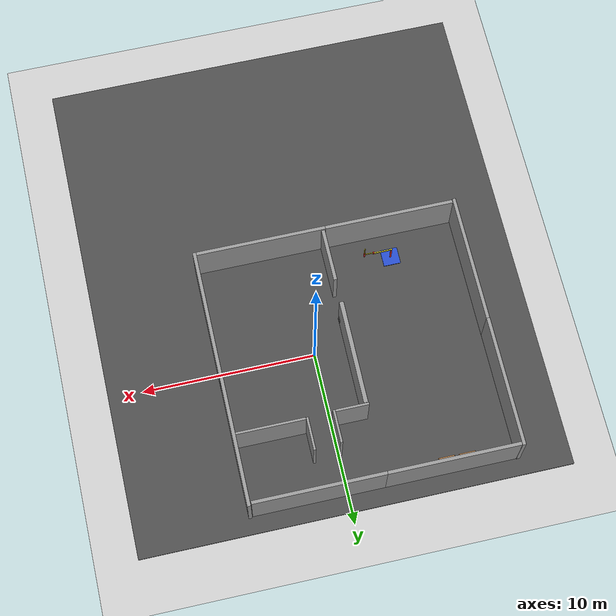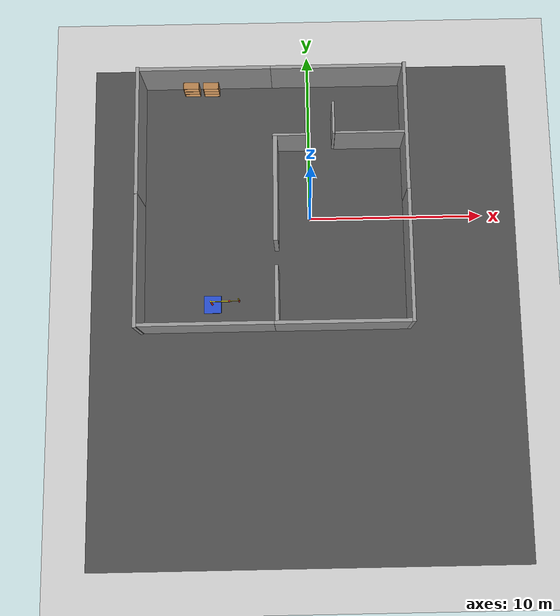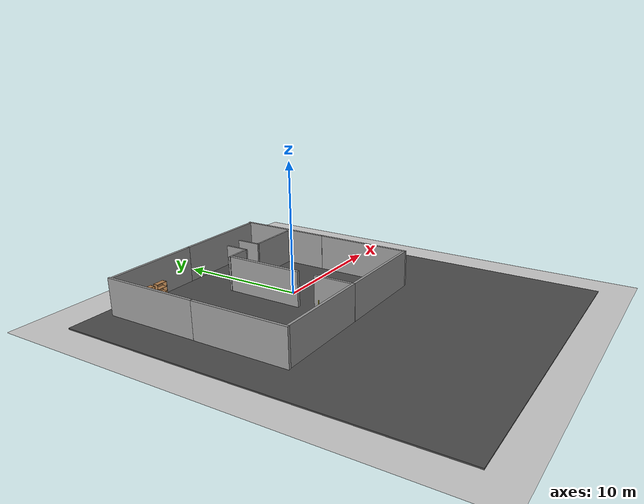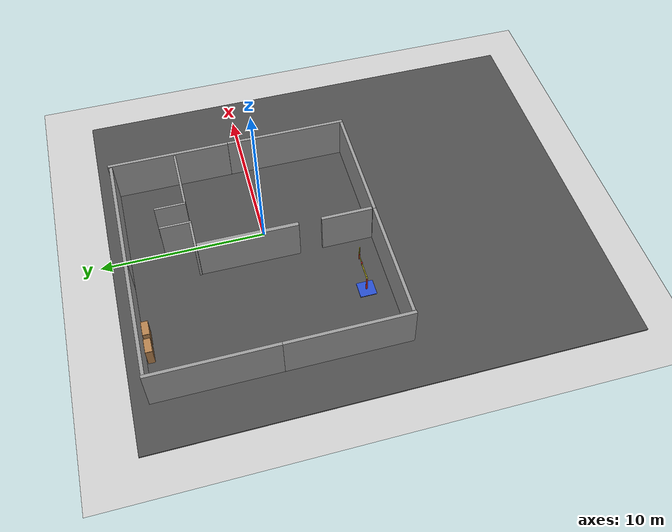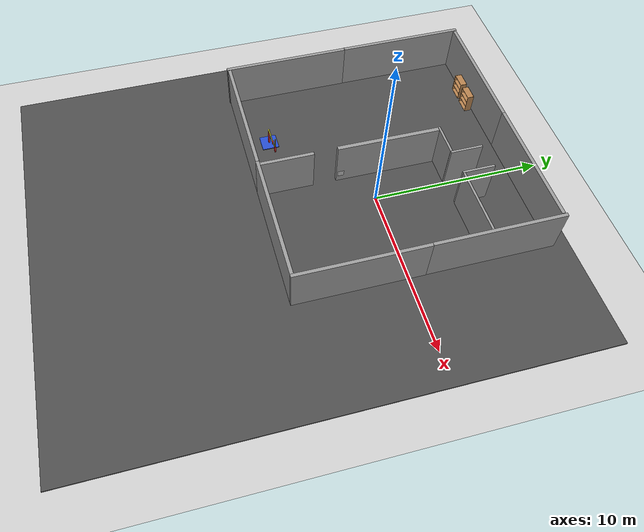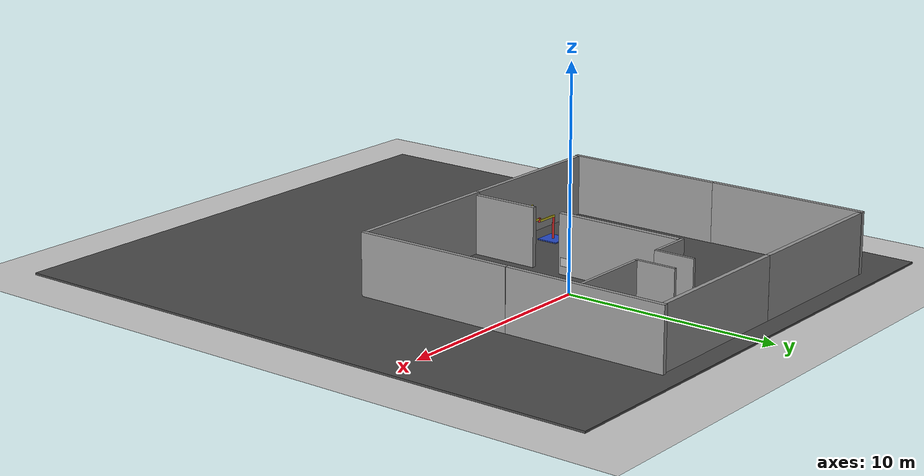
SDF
<sdf version="1.7">
 <world name="default">
  <light name="sun" type="directional">
   <pose>0 0 10 0 -0 0</pose>
   <diffuse>0.8 0.8 0.8 1</diffuse>
   <specular>0.2 0.2 0.2 1</specular>
   <attenuation>
    <range>1000</range>
    <constant>0.9</constant>
    <linear>0.01</linear>
    <quadratic>0.001</quadratic>
   </attenuation>
   <direction>-0.5 0.1 -0.9</direction>
   <spot><inner_angle>0</inner_angle><outer_angle>0</outer_angle><falloff>0</falloff></spot>
  </light>
  <model name="ground_plane">
   <static>1</static>
   <link name="link">
    <collision name="collision">
     <geometry><plane><normal>0 0 1</normal><size>100 100</size></plane></geometry>
     <surface><friction><ode><mu>100</mu><mu2>50</mu2></ode></friction></surface>
    </collision>
    <visual name="visual">
     <cast_shadows>0</cast_shadows>
     <geometry><plane><normal>0 0 1</normal><size>100 100</size></plane></geometry>
     <material>
      <script><uri>file://media/materials/scripts/gazebo.material</uri><name>Gazebo/Grey</name></script>
     </material>
    </visual>
   </link>
  </model>
  <gravity>0 0 -9.8</gravity>
  <magnetic_field>6e-06 2.3e-05 -4.2e-05</magnetic_field>
  <atmosphere type="adiabatic"/>
  <physics type="ode">
   <max_step_size>0.001</max_step_size>
   <real_time_factor>1</real_time_factor>
   <real_time_update_rate>1000</real_time_update_rate>
  </physics>
  <scene><ambient>0.4 0.4 0.4 1</ambient><background>0.7 0.7 0.7 1</background><shadows>1</shadows></scene>
  <spherical_coordinates>
   <surface_model>EARTH_WGS84</surface_model>
   <latitude_deg>0</latitude_deg>
   <longitude_deg>0</longitude_deg>
   <elevation>0</elevation>
   <heading_deg>0</heading_deg>
  </spherical_coordinates>
  <model name="asphalt_plane">
   <static>1</static>
   <link name="link">
    <collision name="collision"><geometry><box><size>24.6162 29.0071 0.1</size></box></geometry></collision>
    <visual name="visual">
     <cast_shadows>0</cast_shadows>
     <geometry><box><size>24.6162 29.0071 0.1</size></box></geometry>
     <material>
      <script>
       <uri>model://asphalt_plane/materials/scripts</uri>
       <uri>model://asphalt_plane/materials/textures</uri>
       <name>vrc/asphalt</name>
      </script>
     </material>
    </visual>
   </link>
   <pose>-0.354263 -5.16338 0 0 -0 0</pose>
  </model>
  <model name="grey_wall">
   <static>1</static>
   <link name="link">
    <pose>0 0 1.4 0 -0 0</pose>
    <collision name="collision"><geometry><box><size>7.5 0.2 2.8</size></box></geometry></collision>
    <visual name="visual">
     <cast_shadows>0</cast_shadows>
     <geometry><box><size>7.5 0.2 2.8</size></box></geometry>
     <material>
      <script>
       <uri>model://grey_wall/materials/scripts</uri>
       <uri>model://grey_wall/materials/textures</uri>
       <name>vrc/grey_wall</name>
      </script>
     </material>
    </visual>
   </link>
   <pose>-5.82232 -6.46747 0.05 0 -0 0</pose>
  </model>
  <model name="grey_wall_clone_clone">
   <static>1</static>
   <link name="link">
    <pose>0 0 1.4 0 -0 0</pose>
    <collision name="collision"><geometry><box><size>7.5 0.2 2.8</size></box></geometry></collision>
    <visual name="visual">
     <cast_shadows>0</cast_shadows>
     <geometry><box><size>7.5 0.2 2.8</size></box></geometry>
     <material>
      <script>
       <uri>model://grey_wall/materials/scripts</uri>
       <uri>model://grey_wall/materials/textures</uri>
       <name>vrc/grey_wall</name>
      </script>
     </material>
    </visual>
   </link>
   <pose>-9.6884 -2.85562 0.05442 0 0 -1.5708</pose>
  </model>
  <model name="grey_wall_clone_clone_0">
   <static>1</static>
   <link name="link">
    <pose>0 0 1.4 0 -0 0</pose>
    <collision name="collision"><geometry><box><size>7.5 0.2 2.8</size></box></geometry></collision>
    <visual name="visual">
     <cast_shadows>0</cast_shadows>
     <geometry><box><size>7.5 0.2 2.8</size></box></geometry>
     <material>
      <script>
       <uri>model://grey_wall/materials/scripts</uri>
       <uri>model://grey_wall/materials/textures</uri>
       <name>vrc/grey_wall</name>
      </script>
     </material>
    </visual>
   </link>
   <pose>-9.68971 4.64219 0.06431 0 -0 1.5708</pose>
  </model>
  <model name="grey_wall_clone_clone_1">
   <static>1</static>
   <link name="link">
    <pose>0 0 1.4 0 -0 0</pose>
    <collision name="collision"><geometry><box><size>7.5 0.2 2.8</size></box></geometry></collision>
    <visual name="visual">
     <cast_shadows>0</cast_shadows>
     <geometry><box><size>7.5 0.2 2.8</size></box></geometry>
     <material>
      <script>
       <uri>model://grey_wall/materials/scripts</uri>
       <uri>model://grey_wall/materials/textures</uri>
       <name>vrc/grey_wall</name>
      </script>
     </material>
    </visual>
   </link>
   <pose>-5.84809 8.26747 0.03652 0 -0 0</pose>
  </model>
  <model name="grey_wall_clone_clone_1_clone">
   <static>1</static>
   <link name="link">
    <pose>0 0 1.4 0 -0 0</pose>
    <collision name="collision"><geometry><box><size>7.5 0.2 2.8</size></box></geometry></collision>
    <visual name="visual">
     <cast_shadows>0</cast_shadows>
     <geometry><box><size>7.5 0.2 2.8</size></box></geometry>
     <material>
      <script>
       <uri>model://grey_wall/materials/scripts</uri>
       <uri>model://grey_wall/materials/textures</uri>
       <name>vrc/grey_wall</name>
      </script>
     </material>
    </visual>
   </link>
   <pose>1.64081 8.26514 0.03718 0 -0 0</pose>
  </model>
  <model name="grey_wall_clone_clone_0_clone">
   <static>1</static>
   <link name="link">
    <pose>0 0 1.4 0 -0 0</pose>
    <collision name="collision"><geometry><box><size>7.5 0.2 2.8</size></box></geometry></collision>
    <visual name="visual">
     <cast_shadows>0</cast_shadows>
     <geometry><box><size>7.5 0.2 2.8</size></box></geometry>
     <material>
      <script>
       <uri>model://grey_wall/materials/scripts</uri>
       <uri>model://grey_wall/materials/textures</uri>
       <name>vrc/grey_wall</name>
      </script>
     </material>
    </visual>
   </link>
   <pose>5.52618 4.68642 0.05343 0 -0 1.5708</pose>
  </model>
  <model name="unit_box_clone_1">
   <static>1</static>
   <pose>-1.92152 1.14687 1.40968 0 0 -1.57627</pose>
   <link name="link">
    <inertial>
     <mass>1</mass>
     <inertia>
      <ixx>0.166667</ixx>
      <ixy>0</ixy>
      <ixz>0</ixz>
      <iyy>0.166667</iyy>
      <iyz>0</iyz>
      <izz>0.166667</izz>
     </inertia>
    </inertial>
    <collision name="collision"><geometry><box><size>6.03446 0.248953 2.72133</size></box></geometry></collision>
    <visual name="visual">
     <geometry><box><size>6.03446 0.248953 2.72133</size></box></geometry>
     <material>
      <script><name>Gazebo/Grey</name><uri>file://media/materials/scripts/gazebo.material</uri></script>
     </material>
    </visual>
   </link>
  </model>
  <model name="unit_box_clone_0_clone">
   <static>1</static>
   <pose>-1.1142 4.24533 1.40454 0 -0 0</pose>
   <link name="link">
    <inertial>
     <mass>1</mass>
     <inertia>
      <ixx>0.166667</ixx>
      <ixy>0</ixy>
      <ixz>0</ixz>
      <iyy>0.166667</iyy>
      <iyz>0</iyz>
      <izz>0.166667</izz>
     </inertia>
    </inertial>
    <collision name="collision"><geometry><box><size>1.88786 0.135277 2.70908</size></box></geometry></collision>
    <visual name="visual">
     <geometry><box><size>1.88786 0.135277 2.70908</size></box></geometry>
     <material>
      <script><name>Gazebo/Grey</name><uri>file://media/materials/scripts/gazebo.material</uri></script>
     </material>
    </visual>
   </link>
  </model>
  <model name="unit_box_clone_0_clone_0">
   <static>1</static>
   <pose>-0.0943 5.12897 1.40454 0 0 -1.57</pose>
   <link name="link">
    <inertial>
     <mass>1</mass>
     <inertia>
      <ixx>0.166667</ixx>
      <ixy>0</ixy>
      <ixz>0</ixz>
      <iyy>0.166667</iyy>
      <iyz>0</iyz>
      <izz>0.166667</izz>
     </inertia>
    </inertial>
    <collision name="collision"><geometry><box><size>1.88786 0.135277 2.70908</size></box></geometry></collision>
    <visual name="visual">
     <geometry><box><size>1.88786 0.135277 2.70908</size></box></geometry>
     <material>
      <script><name>Gazebo/Grey</name><uri>file://media/materials/scripts/gazebo.material</uri></script>
     </material>
    </visual>
   </link>
  </model>
  <model name="unit_box_clone_0_clone_0_clone">
   <static>1</static>
   <pose>1.41732 5.21901 1.40454 0 0 -1.57</pose>
   <link name="link">
    <inertial>
     <mass>1</mass>
     <inertia>
      <ixx>0.166667</ixx>
      <ixy>0</ixy>
      <ixz>0</ixz>
      <iyy>0.166667</iyy>
      <iyz>0</iyz>
      <izz>0.166667</izz>
     </inertia>
    </inertial>
    <collision name="collision"><geometry><box><size>1.88786 0.135277 2.70908</size></box></geometry></collision>
    <visual name="visual">
     <geometry><box><size>1.88786 0.135277 2.70908</size></box></geometry>
     <material>
      <script><name>Gazebo/Grey</name><uri>file://media/materials/scripts/gazebo.material</uri></script>
     </material>
    </visual>
   </link>
  </model>
  <model name="unit_box_clone_0_clone_clone">
   <static>1</static>
   <pose>3.47021 4.32085 1.40443 0 -0 0</pose>
   <link name="link">
    <inertial>
     <mass>1</mass>
     <inertia>
      <ixx>0.166667</ixx>
      <ixy>0</ixy>
      <ixz>0</ixz>
      <iyy>0.166667</iyy>
      <iyz>0</iyz>
      <izz>0.166667</izz>
     </inertia>
    </inertial>
    <collision name="collision"><geometry><box><size>3.94446 0.135277 2.70908</size></box></geometry></collision>
    <visual name="visual">
     <geometry><box><size>3.94446 0.135277 2.70908</size></box></geometry>
     <material>
      <script><name>Gazebo/Grey</name><uri>file://media/materials/scripts/gazebo.material</uri></script>
     </material>
    </visual>
   </link>
  </model>
  <model name="bookshelf">
   <static>1</static>
   <link name="link">
    <inertial><mass>1</mass></inertial>
    <collision name="back">
     <pose>0 0.005 0.6 0 -0 0</pose>
     <geometry><box><size>0.9 0.01 1.2</size></box></geometry>
    </collision>
    <visual name="visual1">
     <pose>0 0.005 0.6 0 -0 0</pose>
     <geometry><box><size>0.9 0.01 1.2</size></box></geometry>
     <material>
      <script><uri>file://media/materials/scripts/gazebo.material</uri><name>Gazebo/Wood</name></script>
     </material>
    </visual>
    <collision name="left_side">
     <pose>0.45 -0.195 0.6 0 -0 0</pose>
     <geometry><box><size>0.02 0.4 1.2</size></box></geometry>
    </collision>
    <visual name="visual2">
     <pose>0.45 -0.195 0.6 0 -0 0</pose>
     <geometry><box><size>0.02 0.4 1.2</size></box></geometry>
     <material>
      <script><uri>file://media/materials/scripts/gazebo.material</uri><name>Gazebo/Wood</name></script>
     </material>
    </visual>
    <collision name="right_side">
     <pose>-0.45 -0.195 0.6 0 -0 0</pose>
     <geometry><box><size>0.02 0.4 1.2</size></box></geometry>
    </collision>
    <visual name="visual3">
     <pose>-0.45 -0.195 0.6 0 -0 0</pose>
     <geometry><box><size>0.02 0.4 1.2</size></box></geometry>
     <material>
      <script><uri>file://media/materials/scripts/gazebo.material</uri><name>Gazebo/Wood</name></script>
     </material>
    </visual>
    <collision name="bottom">
     <pose>0 -0.195 0.03 0 -0 0</pose>
     <geometry><box><size>0.88 0.4 0.06</size></box></geometry>
    </collision>
    <visual name="visual4">
     <pose>0 -0.195 0.03 0 -0 0</pose>
     <geometry><box><size>0.88 0.4 0.06</size></box></geometry>
     <material>
      <script><uri>file://media/materials/scripts/gazebo.material</uri><name>Gazebo/Wood</name></script>
     </material>
    </visual>
    <collision name="top">
     <pose>0 -0.195 1.19 0 -0 0</pose>
     <geometry><box><size>0.88 0.4 0.02</size></box></geometry>
    </collision>
    <visual name="visual5">
     <pose>0 -0.195 1.19 0 -0 0</pose>
     <geometry><box><size>0.88 0.4 0.02</size></box></geometry>
     <material>
      <script><uri>file://media/materials/scripts/gazebo.material</uri><name>Gazebo/Wood</name></script>
     </material>
    </visual>
    <collision name="low_shelf">
     <pose>0 -0.195 0.43 0 -0 0</pose>
     <geometry><box><size>0.88 0.4 0.02</size></box></geometry>
    </collision>
    <visual name="visual6">
     <pose>0 -0.195 0.43 0 -0 0</pose>
     <geometry><box><size>0.88 0.4 0.02</size></box></geometry>
     <material>
      <script><uri>file://media/materials/scripts/gazebo.material</uri><name>Gazebo/Wood</name></script>
     </material>
    </visual>
    <collision name="high_shelf">
     <pose>0 -0.195 0.8 0 -0 0</pose>
     <geometry><box><size>0.88 0.4 0.02</size></box></geometry>
    </collision>
    <visual name="visual7">
     <pose>0 -0.195 0.8 0 -0 0</pose>
     <geometry><box><size>0.88 0.4 0.02</size></box></geometry>
     <material>
      <script><uri>file://media/materials/scripts/gazebo.material</uri><name>Gazebo/Wood</name></script>
     </material>
    </visual>
   </link>
   <pose>-6.82454 8.09729 0 0 -0 0</pose>
  </model>
  <model name="bookshelf_0">
   <static>1</static>
   <link name="link">
    <inertial><mass>1</mass></inertial>
    <collision name="back">
     <pose>0 0.005 0.6 0 -0 0</pose>
     <geometry><box><size>0.9 0.01 1.2</size></box></geometry>
    </collision>
    <visual name="visual1">
     <pose>0 0.005 0.6 0 -0 0</pose>
     <geometry><box><size>0.9 0.01 1.2</size></box></geometry>
     <material>
      <script><uri>file://media/materials/scripts/gazebo.material</uri><name>Gazebo/Wood</name></script>
     </material>
    </visual>
    <collision name="left_side">
     <pose>0.45 -0.195 0.6 0 -0 0</pose>
     <geometry><box><size>0.02 0.4 1.2</size></box></geometry>
    </collision>
    <visual name="visual2">
     <pose>0.45 -0.195 0.6 0 -0 0</pose>
     <geometry><box><size>0.02 0.4 1.2</size></box></geometry>
     <material>
      <script><uri>file://media/materials/scripts/gazebo.material</uri><name>Gazebo/Wood</name></script>
     </material>
    </visual>
    <collision name="right_side">
     <pose>-0.45 -0.195 0.6 0 -0 0</pose>
     <geometry><box><size>0.02 0.4 1.2</size></box></geometry>
    </collision>
    <visual name="visual3">
     <pose>-0.45 -0.195 0.6 0 -0 0</pose>
     <geometry><box><size>0.02 0.4 1.2</size></box></geometry>
     <material>
      <script><uri>file://media/materials/scripts/gazebo.material</uri><name>Gazebo/Wood</name></script>
     </material>
    </visual>
    <collision name="bottom">
     <pose>0 -0.195 0.03 0 -0 0</pose>
     <geometry><box><size>0.88 0.4 0.06</size></box></geometry>
    </collision>
    <visual name="visual4">
     <pose>0 -0.195 0.03 0 -0 0</pose>
     <geometry><box><size>0.88 0.4 0.06</size></box></geometry>
     <material>
      <script><uri>file://media/materials/scripts/gazebo.material</uri><name>Gazebo/Wood</name></script>
     </material>
    </visual>
    <collision name="top">
     <pose>0 -0.195 1.19 0 -0 0</pose>
     <geometry><box><size>0.88 0.4 0.02</size></box></geometry>
    </collision>
    <visual name="visual5">
     <pose>0 -0.195 1.19 0 -0 0</pose>
     <geometry><box><size>0.88 0.4 0.02</size></box></geometry>
     <material>
      <script><uri>file://media/materials/scripts/gazebo.material</uri><name>Gazebo/Wood</name></script>
     </material>
    </visual>
    <collision name="low_shelf">
     <pose>0 -0.195 0.43 0 -0 0</pose>
     <geometry><box><size>0.88 0.4 0.02</size></box></geometry>
    </collision>
    <visual name="visual6">
     <pose>0 -0.195 0.43 0 -0 0</pose>
     <geometry><box><size>0.88 0.4 0.02</size></box></geometry>
     <material>
      <script><uri>file://media/materials/scripts/gazebo.material</uri><name>Gazebo/Wood</name></script>
     </material>
    </visual>
    <collision name="high_shelf">
     <pose>0 -0.195 0.8 0 -0 0</pose>
     <geometry><box><size>0.88 0.4 0.02</size></box></geometry>
    </collision>
    <visual name="visual7">
     <pose>0 -0.195 0.8 0 -0 0</pose>
     <geometry><box><size>0.88 0.4 0.02</size></box></geometry>
     <material>
      <script><uri>file://media/materials/scripts/gazebo.material</uri><name>Gazebo/Wood</name></script>
     </material>
    </visual>
   </link>
   <pose>-5.67086 8.08684 0 0 -0 0</pose>
  </model>
  <model name="grey_wall_clone_clone_0_clone_clone">
   <static>1</static>
   <link name="link">
    <pose>0 0 1.4 0 -0 0</pose>
    <collision name="collision"><geometry><box><size>7.5 0.2 2.8</size></box></geometry></collision>
    <visual name="visual">
     <cast_shadows>0</cast_shadows>
     <geometry><box><size>7.5 0.2 2.8</size></box></geometry>
     <material>
      <script>
       <uri>model://grey_wall/materials/scripts</uri>
       <uri>model://grey_wall/materials/textures</uri>
       <name>vrc/grey_wall</name>
      </script>
     </material>
    </visual>
   </link>
   <pose>5.53592 -2.81719 0.05343 0 -0 1.5708</pose>
  </model>
  <model name="grey_wall_clone">
   <static>1</static>
   <link name="link">
    <pose>0 0 1.4 0 -0 0</pose>
    <collision name="collision"><geometry><box><size>7.5 0.2 2.8</size></box></geometry></collision>
    <visual name="visual">
     <cast_shadows>0</cast_shadows>
     <geometry><box><size>7.5 0.2 2.8</size></box></geometry>
     <material>
      <script>
       <uri>model://grey_wall/materials/scripts</uri>
       <uri>model://grey_wall/materials/textures</uri>
       <name>vrc/grey_wall</name>
      </script>
     </material>
    </visual>
   </link>
   <pose>1.68398 -6.47118 0.05 0 -0 0</pose>
  </model>
  <model name="unit_box_clone_0_clone_0_clone_clone">
   <static>1</static>
   <pose>-1.91941 -4.80587 1.40454 0 0 -1.57</pose>
   <link name="link">
    <inertial>
     <mass>1</mass>
     <inertia>
      <ixx>0.166667</ixx>
      <ixy>0</ixy>
      <ixz>0</ixz>
      <iyy>0.166667</iyy>
      <iyz>0</iyz>
      <izz>0.166667</izz>
     </inertia>
    </inertial>
    <collision name="collision"><geometry><box><size>3.10834 0.204594 2.70908</size></box></geometry></collision>
    <visual name="visual">
     <geometry><box><size>3.10834 0.204594 2.70908</size></box></geometry>
     <material>
      <script><name>Gazebo/Grey</name><uri>file://media/materials/scripts/gazebo.material</uri></script>
     </material>
    </visual>
   </link>
  </model>
  <model name="simple_arm">
   <static>1</static>
   <link name="arm_base">
    <inertial>
     <pose>0 0 0.00099 0 -0 0</pose>
     <inertia><ixx>1.11</ixx><ixy>0</ixy><ixz>0</ixz><iyy>100.11</iyy><iyz>0</iyz><izz>1.01</izz></inertia>
     <mass>101</mass>
    </inertial>
    <collision name="arm_base_geom">
     <pose>0 0 0.05 0 -0 0</pose>
     <geometry><box><size>1 1 0.1</size></box></geometry>
    </collision>
    <visual name="arm_base_geom_visual">
     <pose>0 0 0.05 0 -0 0</pose>
     <geometry><box><size>1 1 0.1</size></box></geometry>
     <material>
      <script><uri>file://media/materials/scripts/gazebo.material</uri><name>Gazebo/Blue</name></script>
     </material>
    </visual>
    <collision name="arm_base_geom_arm_trunk">
     <pose>0 0 0.6 0 -0 0</pose>
     <geometry><cylinder><radius>0.05</radius><length>1</length></cylinder></geometry>
    </collision>
    <visual name="arm_base_geom_arm_trunk_visual">
     <pose>0 0 0.6 0 -0 0</pose>
     <geometry><cylinder><radius>0.05</radius><length>1</length></cylinder></geometry>
     <material>
      <script><uri>file://media/materials/scripts/gazebo.material</uri><name>Gazebo/Red</name></script>
     </material>
    </visual>
   </link>
   <link name="arm_shoulder_pan">
    <pose>0 0 1.1 0 -0 0</pose>
    <inertial>
     <pose>0.045455 0 0 0 -0 0</pose>
     <inertia><ixx>0.011</ixx><ixy>0</ixy><ixz>0</ixz><iyy>0.0225</iyy><iyz>0</iyz><izz>0.0135</izz></inertia>
     <mass>1.1</mass>
    </inertial>
    <collision name="arm_shoulder_pan_geom">
     <pose>0 0 0.05 0 -0 0</pose>
     <geometry><cylinder><radius>0.05</radius><length>0.1</length></cylinder></geometry>
    </collision>
    <visual name="arm_shoulder_pan_geom_visual">
     <pose>0 0 0.05 0 -0 0</pose>
     <geometry><cylinder><radius>0.05</radius><length>0.1</length></cylinder></geometry>
     <material>
      <script><uri>file://media/materials/scripts/gazebo.material</uri><name>Gazebo/Yellow</name></script>
     </material>
    </visual>
    <collision name="arm_shoulder_pan_geom_arm_shoulder">
     <pose>0.55 0 0.05 0 -0 0</pose>
     <geometry><box><size>1 0.05 0.1</size></box></geometry>
    </collision>
    <visual name="arm_shoulder_pan_geom_arm_shoulder_visual">
     <pose>0.55 0 0.05 0 -0 0</pose>
     <geometry><box><size>1 0.05 0.1</size></box></geometry>
     <material>
      <script><uri>file://media/materials/scripts/gazebo.material</uri><name>Gazebo/Yellow</name></script>
     </material>
    </visual>
   </link>
   <link name="arm_elbow_pan">
    <pose>1.05 0 1.1 0 -0 0</pose>
    <inertial>
     <pose>0.0875 0 0.083333 0 -0 0</pose>
     <inertia>
      <ixx>0.031</ixx>
      <ixy>0</ixy>
      <ixz>0.005</ixz>
      <iyy>0.07275</iyy>
      <iyz>0</iyz>
      <izz>0.04475</izz>
     </inertia>
     <mass>1.2</mass>
    </inertial>
    <collision name="arm_elbow_pan_geom">
     <pose>0 0 0.1 0 -0 0</pose>
     <geometry><cylinder><radius>0.05</radius><length>0.2</length></cylinder></geometry>
    </collision>
    <visual name="arm_elbow_pan_geom_visual">
     <pose>0 0 0.1 0 -0 0</pose>
     <geometry><cylinder><radius>0.05</radius><length>0.2</length></cylinder></geometry>
     <material>
      <script><uri>file://media/materials/scripts/gazebo.material</uri><name>Gazebo/Red</name></script>
     </material>
    </visual>
    <collision name="arm_elbow_pan_geom_arm_elbow">
     <pose>0.3 0 0.15 0 -0 0</pose>
     <geometry><box><size>0.5 0.03 0.1</size></box></geometry>
    </collision>
    <visual name="arm_elbow_pan_geom_arm_elbow_visual">
     <pose>0.3 0 0.15 0 -0 0</pose>
     <geometry><box><size>0.5 0.03 0.1</size></box></geometry>
     <material>
      <script><uri>file://media/materials/scripts/gazebo.material</uri><name>Gazebo/Yellow</name></script>
     </material>
    </visual>
    <collision name="arm_elbow_pan_geom_arm_wrist">
     <pose>0.55 0 0.15 0 -0 0</pose>
     <geometry><cylinder><radius>0.05</radius><length>0.3</length></cylinder></geometry>
    </collision>
    <visual name="arm_elbow_pan_geom_arm_wrist_visual">
     <pose>0.55 0 0.15 0 -0 0</pose>
     <geometry><cylinder><radius>0.05</radius><length>0.3</length></cylinder></geometry>
     <material>
      <script><uri>file://media/materials/scripts/gazebo.material</uri><name>Gazebo/Red</name></script>
     </material>
    </visual>
   </link>
   <link name="arm_wrist_lift">
    <pose>1.6 0 1.05 0 -0 0</pose>
    <inertial>
     <inertia><ixx>0.01</ixx><ixy>0</ixy><ixz>0</ixz><iyy>0.01</iyy><iyz>0</iyz><izz>0.001</izz></inertia>
     <mass>0.1</mass>
    </inertial>
    <collision name="arm_wrist_lift_geom">
     <pose>0 0 0.5 0 -0 0</pose>
     <geometry><cylinder><radius>0.03</radius><length>1</length></cylinder></geometry>
    </collision>
    <visual name="arm_wrist_lift_geom_visual">
     <pose>0 0 0.5 0 -0 0</pose>
     <geometry><cylinder><radius>0.03</radius><length>1</length></cylinder></geometry>
     <material>
      <script><uri>file://media/materials/scripts/gazebo.material</uri><name>Gazebo/Yellow</name></script>
     </material>
    </visual>
   </link>
   <link name="arm_wrist_roll">
    <pose>1.6 0 1 0 -0 0</pose>
    <inertial>
     <inertia><ixx>0.01</ixx><ixy>0</ixy><ixz>0</ixz><iyy>0.01</iyy><iyz>0</iyz><izz>0.001</izz></inertia>
     <mass>0.1</mass>
    </inertial>
    <collision name="arm_wrist_roll_geom">
     <pose>0 0 0.025 0 -0 0</pose>
     <geometry><cylinder><radius>0.05</radius><length>0.05</length></cylinder></geometry>
    </collision>
    <visual name="arm_wrist_roll_geom_visual">
     <pose>0 0 0.025 0 -0 0</pose>
     <geometry><cylinder><radius>0.05</radius><length>0.05</length></cylinder></geometry>
     <material>
      <script><uri>file://media/materials/scripts/gazebo.material</uri><name>Gazebo/Red</name></script>
     </material>
    </visual>
   </link>
   <joint name="arm_shoulder_pan_joint" type="revolute">
    <parent>arm_base</parent>
    <child>arm_shoulder_pan</child>
    <axis>
     <dynamics>
      <damping>1</damping>
      <friction>0</friction>
      <spring_reference>0</spring_reference>
      <spring_stiffness>0</spring_stiffness>
     </dynamics>
     <xyz expressed_in="__model__">0 0 1</xyz>
     <limit><lower>-1e+16</lower><upper>1e+16</upper></limit>
    </axis>
   </joint>
   <joint name="arm_elbow_pan_joint" type="revolute">
    <parent>arm_shoulder_pan</parent>
    <child>arm_elbow_pan</child>
    <axis>
     <dynamics>
      <damping>1</damping>
      <friction>0</friction>
      <spring_reference>0</spring_reference>
      <spring_stiffness>0</spring_stiffness>
     </dynamics>
     <xyz expressed_in="__model__">0 0 1</xyz>
     <limit><lower>-1e+16</lower><upper>1e+16</upper></limit>
    </axis>
   </joint>
   <joint name="arm_wrist_lift_joint" type="prismatic">
    <parent>arm_elbow_pan</parent>
    <child>arm_wrist_lift</child>
    <axis>
     <dynamics>
      <damping>1</damping>
      <friction>0</friction>
      <spring_reference>0</spring_reference>
      <spring_stiffness>0</spring_stiffness>
     </dynamics>
     <limit><lower>-0.8</lower><upper>0.1</upper></limit>
     <xyz expressed_in="__model__">0 0 1</xyz>
    </axis>
   </joint>
   <joint name="arm_wrist_roll_joint" type="revolute">
    <parent>arm_wrist_lift</parent>
    <child>arm_wrist_roll</child>
    <axis>
     <dynamics>
      <damping>1</damping>
      <friction>0</friction>
      <spring_reference>0</spring_reference>
      <spring_stiffness>0</spring_stiffness>
     </dynamics>
     <limit><lower>-2.99999</lower><upper>2.99999</upper></limit>
     <xyz expressed_in="__model__">0 0 1</xyz>
    </axis>
   </joint>
   <pose>-5.67774 -4.97684 0 0 -0 0</pose>
  </model>
  <model name="Apriltag36_11_00000">
   <link name="main">
    <visual name="main_Visual">
     <geometry><box><size>0.372072 0.380272 0.01</size></box></geometry>
     <material>
      <script>
       <uri>model://Apriltag36_11_00000/materials/scripts</uri>
       <uri>model://Apriltag36_11_00000/materials/textures</uri>
       <name>Apriltag36_11_00000</name>
      </script>
     </material>
    </visual>
   </link>
   <static>1</static>
   <pose>-1.81485 -1.59693 0.618445 -1.5708 -0.003577 -1.57627</pose>
  </model>
 </world>
</sdf>
